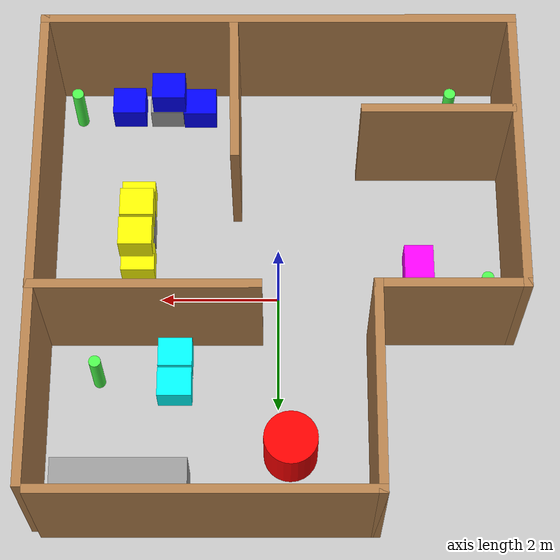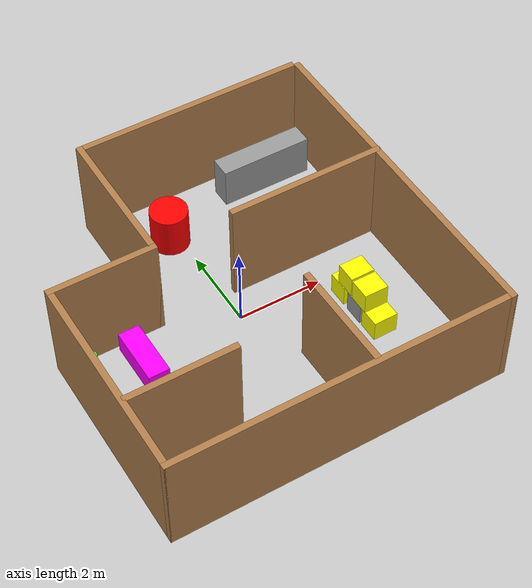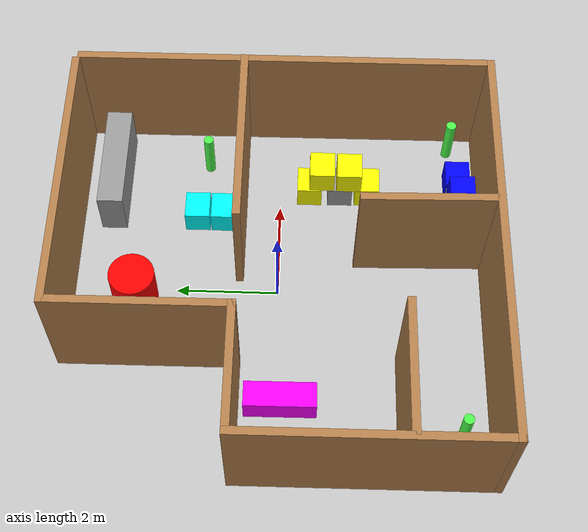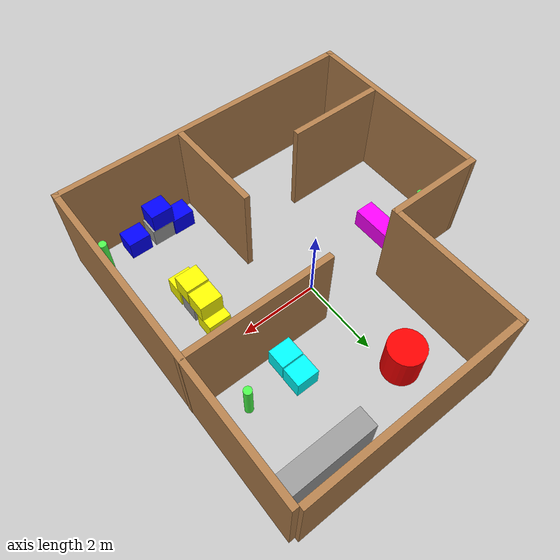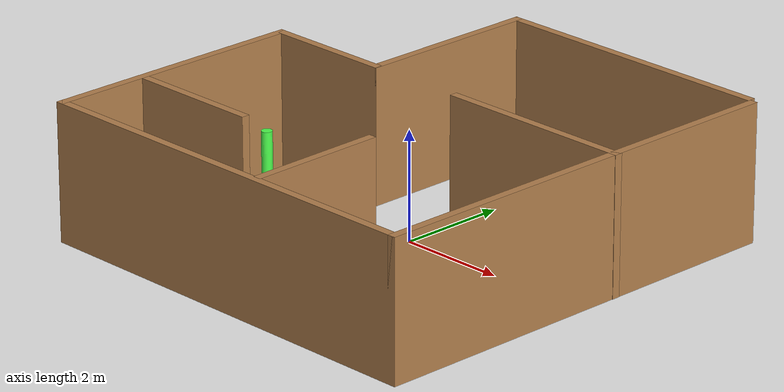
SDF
<sdf version="1.6">
 <model name="RoomHouse">
  <link name="Wall_0">
   <pose>-3.92876 -1.675 0 0 -0 1.5708</pose>
   <visual name="Wall_0_Visual">
    <pose>0 0 1.25 0 -0 0</pose>
    <geometry><box><size>5 0.15 2.5</size></box></geometry>
    <material>
     <script><uri>file://media/materials/scripts/gazebo.material</uri><name>Gazebo/Wood</name></script>
     <ambient>1 1 1 1</ambient>
    </material>
    <meta><layer>0</layer></meta>
   </visual>
   <collision name="Wall_0_Collision">
    <pose>0 0 1.25 0 -0 0</pose>
    <geometry><box><size>5 0.15 2.5</size></box></geometry>
    <surface>
     <friction>
      <ode><mu>1</mu><mu2>1</mu2><fdir1>0 0 0</fdir1><slip1>0</slip1><slip2>0</slip2></ode>
      <torsional>
       <coefficient>1</coefficient>
       <patch_radius>0</patch_radius>
       <surface_radius>0</surface_radius>
       <use_patch_radius>1</use_patch_radius>
       <ode><slip>0</slip></ode>
      </torsional>
     </friction>
     <bounce><restitution_coefficient>0</restitution_coefficient><threshold>1e+06</threshold></bounce>
     <contact>
      <collide_without_contact>0</collide_without_contact>
      <collide_without_contact_bitmask>1</collide_without_contact_bitmask>
      <collide_bitmask>1</collide_bitmask>
      <ode>
       <soft_cfm>0</soft_cfm>
       <soft_erp>0.2</soft_erp>
       <kp>1e+13</kp>
       <kd>1</kd>
       <max_vel>0.01</max_vel>
       <min_depth>0</min_depth>
      </ode>
      <bullet>
       <split_impulse>1</split_impulse>
       <split_impulse_penetration_threshold>-0.01</split_impulse_penetration_threshold>
       <soft_cfm>0</soft_cfm>
       <soft_erp>0.2</soft_erp>
       <kp>1e+13</kp>
       <kd>1</kd>
      </bullet>
     </contact>
    </surface>
   </collision>
  </link>
  <link name="Wall_12">
   <pose>2.12876 0.762181 0 0 -0 3.14159</pose>
   <visual name="Wall_12_Visual">
    <pose>0 0 1.25 0 -0 0</pose>
    <geometry><box><size>3.75 0.15 2.5</size></box></geometry>
    <material>
     <script><uri>file://media/materials/scripts/gazebo.material</uri><name>Gazebo/Wood</name></script>
     <ambient>1 1 1 1</ambient>
    </material>
    <meta><layer>0</layer></meta>
   </visual>
   <collision name="Wall_12_Collision">
    <pose>0 0 1.25 0 -0 0</pose>
    <geometry><box><size>3.75 0.15 2.5</size></box></geometry>
    <surface>
     <friction>
      <ode><mu>1</mu><mu2>1</mu2><fdir1>0 0 0</fdir1><slip1>0</slip1><slip2>0</slip2></ode>
      <torsional>
       <coefficient>1</coefficient>
       <patch_radius>0</patch_radius>
       <surface_radius>0</surface_radius>
       <use_patch_radius>1</use_patch_radius>
       <ode><slip>0</slip></ode>
      </torsional>
     </friction>
     <bounce><restitution_coefficient>0</restitution_coefficient><threshold>1e+06</threshold></bounce>
     <contact>
      <collide_without_contact>0</collide_without_contact>
      <collide_without_contact_bitmask>1</collide_without_contact_bitmask>
      <collide_bitmask>1</collide_bitmask>
      <ode>
       <soft_cfm>0</soft_cfm>
       <soft_erp>0.2</soft_erp>
       <kp>1e+13</kp>
       <kd>1</kd>
       <max_vel>0.01</max_vel>
       <min_depth>0</min_depth>
      </ode>
      <bullet>
       <split_impulse>1</split_impulse>
       <split_impulse_penetration_threshold>-0.01</split_impulse_penetration_threshold>
       <soft_cfm>0</soft_cfm>
       <soft_erp>0.2</soft_erp>
       <kp>1e+13</kp>
       <kd>1</kd>
      </bullet>
     </contact>
    </surface>
   </collision>
  </link>
  <link name="Wall_12_clone">
   <pose>-2.64229 -2.37905 0 0 -0 3.14159</pose>
   <inertial>
    <inertia><ixx>0</ixx><ixy>0</ixy><ixz>0</ixz><iyy>0</iyy><iyz>0</iyz><izz>0</izz></inertia>
    <mass>0</mass>
   </inertial>
   <visual name="Wall_12_Visual">
    <pose>0 0 1.25 0 -0 0</pose>
    <geometry><box><size>2.54886 0.15 2.5</size></box></geometry>
    <material>
     <script><uri>file://media/materials/scripts/gazebo.material</uri><name>Gazebo/Wood</name></script>
     <ambient>1 1 1 1</ambient>
     <shader type="pixel"/>
    </material>
    <meta><layer>0</layer></meta>
   </visual>
   <collision name="Wall_12_Collision">
    <pose>0 0 1.25 0 -0 0</pose>
    <geometry><box><size>2.54886 0.15 2.5</size></box></geometry>
    <surface>
     <friction>
      <ode><mu>1</mu><mu2>1</mu2><fdir1>0 0 0</fdir1><slip1>0</slip1><slip2>0</slip2></ode>
      <torsional>
       <coefficient>1</coefficient>
       <patch_radius>0</patch_radius>
       <surface_radius>0</surface_radius>
       <use_patch_radius>1</use_patch_radius>
       <ode><slip>0</slip></ode>
      </torsional>
     </friction>
     <bounce><restitution_coefficient>0</restitution_coefficient><threshold>1e+06</threshold></bounce>
     <contact>
      <collide_without_contact>0</collide_without_contact>
      <collide_without_contact_bitmask>1</collide_without_contact_bitmask>
      <collide_bitmask>1</collide_bitmask>
      <ode>
       <soft_cfm>0</soft_cfm>
       <soft_erp>0.2</soft_erp>
       <kp>1e+13</kp>
       <kd>1</kd>
       <max_vel>0.01</max_vel>
       <min_depth>0</min_depth>
      </ode>
      <bullet>
       <split_impulse>1</split_impulse>
       <split_impulse_penetration_threshold>-0.01</split_impulse_penetration_threshold>
       <soft_cfm>0</soft_cfm>
       <soft_erp>0.2</soft_erp>
       <kp>1e+13</kp>
       <kd>1</kd>
      </bullet>
     </contact>
    </surface>
   </collision>
  </link>
  <link name="Wall_12_clone_clone">
   <pose>0.72508 -2.77455 0 0 -0 1.58655</pose>
   <inertial>
    <inertia><ixx>0</ixx><ixy>0</ixy><ixz>0</ixz><iyy>0</iyy><iyz>0</iyz><izz>0</izz></inertia>
    <mass>0</mass>
   </inertial>
   <visual name="Wall_12_Visual">
    <pose>0 0 1.25 0 -0 0</pose>
    <geometry><box><size>2.54886 0.15 2.5</size></box></geometry>
    <material>
     <script><uri>file://media/materials/scripts/gazebo.material</uri><name>Gazebo/Wood</name></script>
     <ambient>1 1 1 1</ambient>
     <shader type="pixel"/>
    </material>
    <meta><layer>0</layer></meta>
   </visual>
   <collision name="Wall_12_Collision">
    <pose>0 0 1.25 0 -0 0</pose>
    <geometry><box><size>2.54886 0.15 2.5</size></box></geometry>
    <surface>
     <friction>
      <ode><mu>1</mu><mu2>1</mu2><fdir1>0 0 0</fdir1><slip1>0</slip1><slip2>0</slip2></ode>
      <torsional>
       <coefficient>1</coefficient>
       <patch_radius>0</patch_radius>
       <surface_radius>0</surface_radius>
       <use_patch_radius>1</use_patch_radius>
       <ode><slip>0</slip></ode>
      </torsional>
     </friction>
     <bounce><restitution_coefficient>0</restitution_coefficient><threshold>1e+06</threshold></bounce>
     <contact>
      <collide_without_contact>0</collide_without_contact>
      <collide_without_contact_bitmask>1</collide_without_contact_bitmask>
      <collide_bitmask>1</collide_bitmask>
      <ode>
       <soft_cfm>0</soft_cfm>
       <soft_erp>0.2</soft_erp>
       <kp>1e+13</kp>
       <kd>1</kd>
       <max_vel>0.01</max_vel>
       <min_depth>0</min_depth>
      </ode>
      <bullet>
       <split_impulse>1</split_impulse>
       <split_impulse_penetration_threshold>-0.01</split_impulse_penetration_threshold>
       <soft_cfm>0</soft_cfm>
       <soft_erp>0.2</soft_erp>
       <kp>1e+13</kp>
       <kd>1</kd>
      </bullet>
     </contact>
    </surface>
   </collision>
  </link>
  <link name="Wall_2">
   <pose>-0.003758 -4.1 0 0 -0 0</pose>
   <visual name="Wall_2_Visual">
    <pose>0 0 1.25 0 -0 0</pose>
    <geometry><box><size>8 0.15 2.5</size></box></geometry>
    <material>
     <script><uri>file://media/materials/scripts/gazebo.material</uri><name>Gazebo/Wood</name></script>
     <ambient>1 1 1 1</ambient>
    </material>
    <meta><layer>0</layer></meta>
   </visual>
   <collision name="Wall_2_Collision">
    <pose>0 0 1.25 0 -0 0</pose>
    <geometry><box><size>8 0.15 2.5</size></box></geometry>
    <surface>
     <friction>
      <ode><mu>1</mu><mu2>1</mu2><fdir1>0 0 0</fdir1><slip1>0</slip1><slip2>0</slip2></ode>
      <torsional>
       <coefficient>1</coefficient>
       <patch_radius>0</patch_radius>
       <surface_radius>0</surface_radius>
       <use_patch_radius>1</use_patch_radius>
       <ode><slip>0</slip></ode>
      </torsional>
     </friction>
     <bounce><restitution_coefficient>0</restitution_coefficient><threshold>1e+06</threshold></bounce>
     <contact>
      <collide_without_contact>0</collide_without_contact>
      <collide_without_contact_bitmask>1</collide_without_contact_bitmask>
      <collide_bitmask>1</collide_bitmask>
      <ode>
       <soft_cfm>0</soft_cfm>
       <soft_erp>0.2</soft_erp>
       <kp>1e+13</kp>
       <kd>1</kd>
       <max_vel>0.01</max_vel>
       <min_depth>0</min_depth>
      </ode>
      <bullet>
       <split_impulse>1</split_impulse>
       <split_impulse_penetration_threshold>-0.01</split_impulse_penetration_threshold>
       <soft_cfm>0</soft_cfm>
       <soft_erp>0.2</soft_erp>
       <kp>1e+13</kp>
       <kd>1</kd>
      </bullet>
     </contact>
    </surface>
   </collision>
  </link>
  <link name="Wall_4">
   <pose>3.92124 -0.05 0 0 -0 1.5708</pose>
   <visual name="Wall_4_Visual">
    <pose>0 0 1.25 0 -0 0</pose>
    <geometry><box><size>8.25 0.15 2.5</size></box></geometry>
    <material>
     <script><uri>file://media/materials/scripts/gazebo.material</uri><name>Gazebo/Wood</name></script>
     <ambient>1 1 1 1</ambient>
    </material>
    <meta><layer>0</layer></meta>
   </visual>
   <collision name="Wall_4_Collision">
    <pose>0 0 1.25 0 -0 0</pose>
    <geometry><box><size>8.25 0.15 2.5</size></box></geometry>
    <surface>
     <friction>
      <ode><mu>1</mu><mu2>1</mu2><fdir1>0 0 0</fdir1><slip1>0</slip1><slip2>0</slip2></ode>
      <torsional>
       <coefficient>1</coefficient>
       <patch_radius>0</patch_radius>
       <surface_radius>0</surface_radius>
       <use_patch_radius>1</use_patch_radius>
       <ode><slip>0</slip></ode>
      </torsional>
     </friction>
     <bounce><restitution_coefficient>0</restitution_coefficient><threshold>1e+06</threshold></bounce>
     <contact>
      <collide_without_contact>0</collide_without_contact>
      <collide_without_contact_bitmask>1</collide_without_contact_bitmask>
      <collide_bitmask>1</collide_bitmask>
      <ode>
       <soft_cfm>0</soft_cfm>
       <soft_erp>0.2</soft_erp>
       <kp>1e+13</kp>
       <kd>1</kd>
       <max_vel>0.01</max_vel>
       <min_depth>0</min_depth>
      </ode>
      <bullet>
       <split_impulse>1</split_impulse>
       <split_impulse_penetration_threshold>-0.01</split_impulse_penetration_threshold>
       <soft_cfm>0</soft_cfm>
       <soft_erp>0.2</soft_erp>
       <kp>1e+13</kp>
       <kd>1</kd>
      </bullet>
     </contact>
    </surface>
   </collision>
  </link>
  <link name="Wall_6">
   <pose>-2.75376 0.75 0 0 -0 0</pose>
   <visual name="Wall_6_Visual">
    <pose>0 0 1.25 0 -0 0</pose>
    <geometry><box><size>2.5 0.15 2.5</size></box></geometry>
    <material>
     <script><uri>file://media/materials/scripts/gazebo.material</uri><name>Gazebo/Wood</name></script>
     <ambient>1 1 1 1</ambient>
    </material>
    <meta><layer>0</layer></meta>
   </visual>
   <collision name="Wall_6_Collision">
    <pose>0 0 1.25 0 -0 0</pose>
    <geometry><box><size>2.5 0.15 2.5</size></box></geometry>
    <surface>
     <friction>
      <ode><mu>1</mu><mu2>1</mu2><fdir1>0 0 0</fdir1><slip1>0</slip1><slip2>0</slip2></ode>
      <torsional>
       <coefficient>1</coefficient>
       <patch_radius>0</patch_radius>
       <surface_radius>0</surface_radius>
       <use_patch_radius>1</use_patch_radius>
       <ode><slip>0</slip></ode>
      </torsional>
     </friction>
     <bounce><restitution_coefficient>0</restitution_coefficient><threshold>1e+06</threshold></bounce>
     <contact>
      <collide_without_contact>0</collide_without_contact>
      <collide_without_contact_bitmask>1</collide_without_contact_bitmask>
      <collide_bitmask>1</collide_bitmask>
      <ode>
       <soft_cfm>0</soft_cfm>
       <soft_erp>0.2</soft_erp>
       <kp>1e+13</kp>
       <kd>1</kd>
       <max_vel>0.01</max_vel>
       <min_depth>0</min_depth>
      </ode>
      <bullet>
       <split_impulse>1</split_impulse>
       <split_impulse_penetration_threshold>-0.01</split_impulse_penetration_threshold>
       <soft_cfm>0</soft_cfm>
       <soft_erp>0.2</soft_erp>
       <kp>1e+13</kp>
       <kd>1</kd>
      </bullet>
     </contact>
    </surface>
   </collision>
  </link>
  <link name="Wall_8">
   <pose>-1.57876 2.425 0 0 -0 1.5708</pose>
   <visual name="Wall_8_Visual">
    <pose>0 0 1.25 0 -0 0</pose>
    <geometry><box><size>3.5 0.15 2.5</size></box></geometry>
    <material>
     <script><uri>file://media/materials/scripts/gazebo.material</uri><name>Gazebo/Wood</name></script>
     <ambient>1 1 1 1</ambient>
    </material>
    <meta><layer>0</layer></meta>
   </visual>
   <collision name="Wall_8_Collision">
    <pose>0 0 1.25 0 -0 0</pose>
    <geometry><box><size>3.5 0.15 2.5</size></box></geometry>
    <surface>
     <friction>
      <ode><mu>1</mu><mu2>1</mu2><fdir1>0 0 0</fdir1><slip1>0</slip1><slip2>0</slip2></ode>
      <torsional>
       <coefficient>1</coefficient>
       <patch_radius>0</patch_radius>
       <surface_radius>0</surface_radius>
       <use_patch_radius>1</use_patch_radius>
       <ode><slip>0</slip></ode>
      </torsional>
     </friction>
     <bounce><restitution_coefficient>0</restitution_coefficient><threshold>1e+06</threshold></bounce>
     <contact>
      <collide_without_contact>0</collide_without_contact>
      <collide_without_contact_bitmask>1</collide_without_contact_bitmask>
      <collide_bitmask>1</collide_bitmask>
      <ode>
       <soft_cfm>0</soft_cfm>
       <soft_erp>0.2</soft_erp>
       <kp>1e+13</kp>
       <kd>1</kd>
       <max_vel>0.01</max_vel>
       <min_depth>0</min_depth>
      </ode>
      <bullet>
       <split_impulse>1</split_impulse>
       <split_impulse_penetration_threshold>-0.01</split_impulse_penetration_threshold>
       <soft_cfm>0</soft_cfm>
       <soft_erp>0.2</soft_erp>
       <kp>1e+13</kp>
       <kd>1</kd>
      </bullet>
     </contact>
    </surface>
   </collision>
  </link>
  <link name="Wall_9">
   <pose>1.09624 4.1 0 0 -0 0</pose>
   <visual name="Wall_9_Visual">
    <pose>0 0 1.25 0 -0 0</pose>
    <geometry><box><size>5.5 0.15 2.5</size></box></geometry>
    <material>
     <script><uri>file://media/materials/scripts/gazebo.material</uri><name>Gazebo/Wood</name></script>
     <ambient>1 1 1 1</ambient>
    </material>
    <meta><layer>0</layer></meta>
   </visual>
   <collision name="Wall_9_Collision">
    <pose>0 0 1.25 0 -0 0</pose>
    <geometry><box><size>5.5 0.15 2.5</size></box></geometry>
    <surface>
     <friction>
      <ode><mu>1</mu><mu2>1</mu2><fdir1>0 0 0</fdir1><slip1>0</slip1><slip2>0</slip2></ode>
      <torsional>
       <coefficient>1</coefficient>
       <patch_radius>0</patch_radius>
       <surface_radius>0</surface_radius>
       <use_patch_radius>1</use_patch_radius>
       <ode><slip>0</slip></ode>
      </torsional>
     </friction>
     <bounce><restitution_coefficient>0</restitution_coefficient><threshold>1e+06</threshold></bounce>
     <contact>
      <collide_without_contact>0</collide_without_contact>
      <collide_without_contact_bitmask>1</collide_without_contact_bitmask>
      <collide_bitmask>1</collide_bitmask>
      <ode>
       <soft_cfm>0</soft_cfm>
       <soft_erp>0.2</soft_erp>
       <kp>1e+13</kp>
       <kd>1</kd>
       <max_vel>0.01</max_vel>
       <min_depth>0</min_depth>
      </ode>
      <bullet>
       <split_impulse>1</split_impulse>
       <split_impulse_penetration_threshold>-0.01</split_impulse_penetration_threshold>
       <soft_cfm>0</soft_cfm>
       <soft_erp>0.2</soft_erp>
       <kp>1e+13</kp>
       <kd>1</kd>
      </bullet>
     </contact>
    </surface>
   </collision>
  </link>
  <link name="link_0">
   <inertial>
    <mass>1.12546</mass>
    <inertia>
     <ixx>0.118193</ixx>
     <ixy>0</ixy>
     <ixz>0</ixz>
     <iyy>0.55036</iyy>
     <iyz>0</iyz>
     <izz>0.480977</izz>
    </inertia>
   </inertial>
   <pose>2.55096 3.38549 0.5 0 -0 0</pose>
   <visual name="visual">
    <geometry><box><size>2.20638 0.510112 1</size></box></geometry>
    <material>
     <lighting>1</lighting>
     <script><uri>file://media/materials/scripts/gazebo.material</uri><name>Gazebo/Grey</name></script>
     <ambient>0.5 0.5 0.5 0</ambient>
     <shader type="vertex"><normal_map>__default__</normal_map></shader>
     <diffuse>0.7 0.7 0.7 1</diffuse>
     <specular>0.01 0.01 0.01 1</specular>
     <emissive>0 0 0 1</emissive>
    </material>
   </visual>
   <collision name="collision">
    <geometry><box><size>2.20638 0.510112 1</size></box></geometry>
    <surface>
     <friction>
      <ode><mu>1</mu><mu2>1</mu2><fdir1>0 0 0</fdir1><slip1>0</slip1><slip2>0</slip2></ode>
      <torsional>
       <coefficient>1</coefficient>
       <patch_radius>0</patch_radius>
       <surface_radius>0</surface_radius>
       <use_patch_radius>1</use_patch_radius>
       <ode><slip>0</slip></ode>
      </torsional>
     </friction>
     <bounce><restitution_coefficient>0</restitution_coefficient><threshold>1e+06</threshold></bounce>
     <contact>
      <collide_without_contact>0</collide_without_contact>
      <collide_without_contact_bitmask>1</collide_without_contact_bitmask>
      <collide_bitmask>1</collide_bitmask>
      <ode>
       <soft_cfm>0</soft_cfm>
       <soft_erp>0.2</soft_erp>
       <kp>1e+13</kp>
       <kd>1</kd>
       <max_vel>0.01</max_vel>
       <min_depth>0</min_depth>
      </ode>
      <bullet>
       <split_impulse>1</split_impulse>
       <split_impulse_penetration_threshold>-0.01</split_impulse_penetration_threshold>
       <soft_cfm>0</soft_cfm>
       <soft_erp>0.2</soft_erp>
       <kp>1e+13</kp>
       <kd>1</kd>
      </bullet>
     </contact>
    </surface>
   </collision>
  </link>
  <link name="link_0_0">
   <inertial>
    <mass>0.146602</mass>
    <inertia>
     <ixx>0.00626931</ixx>
     <ixy>0</ixy>
     <ixz>0</ixz>
     <iyy>0.00723583</iyy>
     <iyz>0</iyz>
     <izz>0.00701892</izz>
    </inertia>
   </inertial>
   <pose>1.3865 -3.62185 0.267544 0 -0 0</pose>
   <visual name="visual">
    <geometry><box><size>0.571682 0.497702 0.51523</size></box></geometry>
    <material>
     <lighting>1</lighting>
     <script><uri>file://media/materials/scripts/gazebo.material</uri><name>Gazebo/Grey</name></script>
     <ambient>0 0 1 0</ambient>
     <shader type="vertex"><normal_map>__default__</normal_map></shader>
     <diffuse>0.7 0.7 0.7 1</diffuse>
     <specular>0.01 0.01 0.01 1</specular>
     <emissive>0 0 0 1</emissive>
    </material>
   </visual>
   <collision name="collision">
    <geometry><box><size>0.571682 0.497702 0.51523</size></box></geometry>
    <surface>
     <friction>
      <ode><mu>1</mu><mu2>1</mu2><fdir1>0 0 0</fdir1><slip1>0</slip1><slip2>0</slip2></ode>
      <torsional>
       <coefficient>1</coefficient>
       <patch_radius>0</patch_radius>
       <surface_radius>0</surface_radius>
       <use_patch_radius>1</use_patch_radius>
       <ode><slip>0</slip></ode>
      </torsional>
     </friction>
     <bounce><restitution_coefficient>0</restitution_coefficient><threshold>1e+06</threshold></bounce>
     <contact>
      <collide_without_contact>0</collide_without_contact>
      <collide_without_contact_bitmask>1</collide_without_contact_bitmask>
      <collide_bitmask>1</collide_bitmask>
      <ode>
       <soft_cfm>0</soft_cfm>
       <soft_erp>0.2</soft_erp>
       <kp>1e+13</kp>
       <kd>1</kd>
       <max_vel>0.01</max_vel>
       <min_depth>0</min_depth>
      </ode>
      <bullet>
       <split_impulse>1</split_impulse>
       <split_impulse_penetration_threshold>-0.01</split_impulse_penetration_threshold>
       <soft_cfm>0</soft_cfm>
       <soft_erp>0.2</soft_erp>
       <kp>1e+13</kp>
       <kd>1</kd>
      </bullet>
     </contact>
    </surface>
   </collision>
  </link>
  <link name="link_0_0_clone">
   <inertial>
    <mass>0.146602</mass>
    <inertia>
     <ixx>0.00626931</ixx>
     <ixy>0</ixy>
     <ixz>0</ixz>
     <iyy>0.00723583</iyy>
     <iyz>0</iyz>
     <izz>0.00701892</izz>
    </inertia>
   </inertial>
   <pose>1.96838 -3.64227 0.267544 0 -0 0</pose>
   <visual name="visual_0">
    <geometry><box><size>0.571682 0.497702 0.51523</size></box></geometry>
    <material>
     <lighting>1</lighting>
     <script><uri>file://media/materials/scripts/gazebo.material</uri><name>Gazebo/Grey</name></script>
     <shader type="pixel"/>
    </material>
   </visual>
   <collision name="collision">
    <geometry><box><size>0.571682 0.497702 0.51523</size></box></geometry>
    <surface>
     <friction>
      <ode><mu>1</mu><mu2>1</mu2><fdir1>0 0 0</fdir1><slip1>0</slip1><slip2>0</slip2></ode>
      <torsional>
       <coefficient>1</coefficient>
       <patch_radius>0</patch_radius>
       <surface_radius>0</surface_radius>
       <use_patch_radius>1</use_patch_radius>
       <ode><slip>0</slip></ode>
      </torsional>
     </friction>
     <bounce><restitution_coefficient>0</restitution_coefficient><threshold>1e+06</threshold></bounce>
     <contact>
      <collide_without_contact>0</collide_without_contact>
      <collide_without_contact_bitmask>1</collide_without_contact_bitmask>
      <collide_bitmask>1</collide_bitmask>
      <ode>
       <soft_cfm>0</soft_cfm>
       <soft_erp>0.2</soft_erp>
       <kp>1e+13</kp>
       <kd>1</kd>
       <max_vel>0.01</max_vel>
       <min_depth>0</min_depth>
      </ode>
      <bullet>
       <split_impulse>1</split_impulse>
       <split_impulse_penetration_threshold>-0.01</split_impulse_penetration_threshold>
       <soft_cfm>0</soft_cfm>
       <soft_erp>0.2</soft_erp>
       <kp>1e+13</kp>
       <kd>1</kd>
      </bullet>
     </contact>
    </surface>
   </collision>
  </link>
  <link name="link_0_0_clone_clone">
   <inertial>
    <mass>0.146602</mass>
    <inertia>
     <ixx>0.00626931</ixx>
     <ixy>0</ixy>
     <ixz>0</ixz>
     <iyy>0.00723583</iyy>
     <iyz>0</iyz>
     <izz>0.00701892</izz>
    </inertia>
   </inertial>
   <pose>2.63863 -3.64523 0.267544 0 -0 0</pose>
   <visual name="visual_0">
    <geometry><box><size>0.571682 0.497702 0.51523</size></box></geometry>
    <material>
     <lighting>1</lighting>
     <script><uri>file://media/materials/scripts/gazebo.material</uri><name>Gazebo/Grey</name></script>
     <shader type="pixel"><normal_map>__default__</normal_map></shader>
     <ambient>0 0 1 0</ambient>
     <diffuse>0.7 0.7 0.7 1</diffuse>
     <specular>0.01 0.01 0.01 1</specular>
     <emissive>0 0 0 1</emissive>
    </material>
   </visual>
   <collision name="collision">
    <geometry><box><size>0.571682 0.497702 0.51523</size></box></geometry>
    <surface>
     <friction>
      <ode><mu>1</mu><mu2>1</mu2><fdir1>0 0 0</fdir1><slip1>0</slip1><slip2>0</slip2></ode>
      <torsional>
       <coefficient>1</coefficient>
       <patch_radius>0</patch_radius>
       <surface_radius>0</surface_radius>
       <use_patch_radius>1</use_patch_radius>
       <ode><slip>0</slip></ode>
      </torsional>
     </friction>
     <bounce><restitution_coefficient>0</restitution_coefficient><threshold>1e+06</threshold></bounce>
     <contact>
      <collide_without_contact>0</collide_without_contact>
      <collide_without_contact_bitmask>1</collide_without_contact_bitmask>
      <collide_bitmask>1</collide_bitmask>
      <ode>
       <soft_cfm>0</soft_cfm>
       <soft_erp>0.2</soft_erp>
       <kp>1e+13</kp>
       <kd>1</kd>
       <max_vel>0.01</max_vel>
       <min_depth>0</min_depth>
      </ode>
      <bullet>
       <split_impulse>1</split_impulse>
       <split_impulse_penetration_threshold>-0.01</split_impulse_penetration_threshold>
       <soft_cfm>0</soft_cfm>
       <soft_erp>0.2</soft_erp>
       <kp>1e+13</kp>
       <kd>1</kd>
      </bullet>
     </contact>
    </surface>
   </collision>
  </link>
  <link name="link_0_0_clone_clone_0">
   <inertial>
    <mass>0.146602</mass>
    <inertia>
     <ixx>0.00626931</ixx>
     <ixy>0</ixy>
     <ixz>0</ixz>
     <iyy>0.00723583</iyy>
     <iyz>0</iyz>
     <izz>0.00701892</izz>
    </inertia>
   </inertial>
   <pose>1.91455 -3.64943 0.784163 0 -0 0</pose>
   <visual name="visual_0">
    <geometry><box><size>0.571682 0.497702 0.51523</size></box></geometry>
    <material>
     <lighting>1</lighting>
     <script><uri>file://media/materials/scripts/gazebo.material</uri><name>Gazebo/Grey</name></script>
     <shader type="pixel"><normal_map>__default__</normal_map></shader>
     <ambient>0 0 1 0</ambient>
     <diffuse>0.7 0.7 0.7 1</diffuse>
     <specular>0.01 0.01 0.01 1</specular>
     <emissive>0 0 0 1</emissive>
    </material>
   </visual>
   <collision name="collision">
    <geometry><box><size>0.571682 0.497702 0.51523</size></box></geometry>
    <surface>
     <friction>
      <ode><mu>1</mu><mu2>1</mu2><fdir1>0 0 0</fdir1><slip1>0</slip1><slip2>0</slip2></ode>
      <torsional>
       <coefficient>1</coefficient>
       <patch_radius>0</patch_radius>
       <surface_radius>0</surface_radius>
       <use_patch_radius>1</use_patch_radius>
       <ode><slip>0</slip></ode>
      </torsional>
     </friction>
     <bounce><restitution_coefficient>0</restitution_coefficient><threshold>1e+06</threshold></bounce>
     <contact>
      <collide_without_contact>0</collide_without_contact>
      <collide_without_contact_bitmask>1</collide_without_contact_bitmask>
      <collide_bitmask>1</collide_bitmask>
      <ode>
       <soft_cfm>0</soft_cfm>
       <soft_erp>0.2</soft_erp>
       <kp>1e+13</kp>
       <kd>1</kd>
       <max_vel>0.01</max_vel>
       <min_depth>0</min_depth>
      </ode>
      <bullet>
       <split_impulse>1</split_impulse>
       <split_impulse_penetration_threshold>-0.01</split_impulse_penetration_threshold>
       <soft_cfm>0</soft_cfm>
       <soft_erp>0.2</soft_erp>
       <kp>1e+13</kp>
       <kd>1</kd>
      </bullet>
     </contact>
    </surface>
   </collision>
  </link>
  <link name="link_0_0_clone_clone_clone">
   <inertial>
    <mass>0.146602</mass>
    <inertia>
     <ixx>0.00626931</ixx>
     <ixy>0</ixy>
     <ixz>0</ixz>
     <iyy>0.00723583</iyy>
     <iyz>0</iyz>
     <izz>0.00701892</izz>
    </inertia>
   </inertial>
   <pose>2.39989 -0.597576 0.267544 0 -0 0</pose>
   <visual name="visual_0">
    <geometry><box><size>0.571682 0.497702 0.51523</size></box></geometry>
    <material>
     <lighting>1</lighting>
     <script><uri>file://media/materials/scripts/gazebo.material</uri><name>Gazebo/Grey</name></script>
     <shader type="pixel"><normal_map>__default__</normal_map></shader>
     <ambient>1 1 0 1</ambient>
     <diffuse>0.7 0.7 0.7 1</diffuse>
     <specular>0.01 0.01 0.01 1</specular>
     <emissive>0 0 0 1</emissive>
    </material>
   </visual>
   <collision name="collision">
    <geometry><box><size>0.571682 0.497702 0.51523</size></box></geometry>
    <surface>
     <friction>
      <ode><mu>1</mu><mu2>1</mu2><fdir1>0 0 0</fdir1><slip1>0</slip1><slip2>0</slip2></ode>
      <torsional>
       <coefficient>1</coefficient>
       <patch_radius>0</patch_radius>
       <surface_radius>0</surface_radius>
       <use_patch_radius>1</use_patch_radius>
       <ode><slip>0</slip></ode>
      </torsional>
     </friction>
     <bounce><restitution_coefficient>0</restitution_coefficient><threshold>1e+06</threshold></bounce>
     <contact>
      <collide_without_contact>0</collide_without_contact>
      <collide_without_contact_bitmask>1</collide_without_contact_bitmask>
      <collide_bitmask>1</collide_bitmask>
      <ode>
       <soft_cfm>0</soft_cfm>
       <soft_erp>0.2</soft_erp>
       <kp>1e+13</kp>
       <kd>1</kd>
       <max_vel>0.01</max_vel>
       <min_depth>0</min_depth>
      </ode>
      <bullet>
       <split_impulse>1</split_impulse>
       <split_impulse_penetration_threshold>-0.01</split_impulse_penetration_threshold>
       <soft_cfm>0</soft_cfm>
       <soft_erp>0.2</soft_erp>
       <kp>1e+13</kp>
       <kd>1</kd>
      </bullet>
     </contact>
    </surface>
   </collision>
  </link>
  <link name="link_0_0_clone_clone_clone_clone">
   <inertial>
    <mass>0.146602</mass>
    <inertia>
     <ixx>0.00626931</ixx>
     <ixy>0</ixy>
     <ixz>0</ixz>
     <iyy>0.00723583</iyy>
     <iyz>0</iyz>
     <izz>0.00701892</izz>
    </inertia>
   </inertial>
   <pose>2.40691 -1.21926 0.267544 0 -0 0</pose>
   <visual name="visual_0">
    <geometry><box><size>0.571682 0.497702 0.51523</size></box></geometry>
    <material>
     <lighting>1</lighting>
     <script><uri>file://media/materials/scripts/gazebo.material</uri><name>Gazebo/Grey</name></script>
     <shader type="pixel"/>
    </material>
   </visual>
   <collision name="collision">
    <geometry><box><size>0.571682 0.497702 0.51523</size></box></geometry>
    <surface>
     <friction>
      <ode><mu>1</mu><mu2>1</mu2><fdir1>0 0 0</fdir1><slip1>0</slip1><slip2>0</slip2></ode>
      <torsional>
       <coefficient>1</coefficient>
       <patch_radius>0</patch_radius>
       <surface_radius>0</surface_radius>
       <use_patch_radius>1</use_patch_radius>
       <ode><slip>0</slip></ode>
      </torsional>
     </friction>
     <bounce><restitution_coefficient>0</restitution_coefficient><threshold>1e+06</threshold></bounce>
     <contact>
      <collide_without_contact>0</collide_without_contact>
      <collide_without_contact_bitmask>1</collide_without_contact_bitmask>
      <collide_bitmask>1</collide_bitmask>
      <ode>
       <soft_cfm>0</soft_cfm>
       <soft_erp>0.2</soft_erp>
       <kp>1e+13</kp>
       <kd>1</kd>
       <max_vel>0.01</max_vel>
       <min_depth>0</min_depth>
      </ode>
      <bullet>
       <split_impulse>1</split_impulse>
       <split_impulse_penetration_threshold>-0.01</split_impulse_penetration_threshold>
       <soft_cfm>0</soft_cfm>
       <soft_erp>0.2</soft_erp>
       <kp>1e+13</kp>
       <kd>1</kd>
      </bullet>
     </contact>
    </surface>
   </collision>
  </link>
  <link name="link_0_0_clone_clone_clone_clone_0">
   <inertial>
    <mass>0.146602</mass>
    <inertia>
     <ixx>0.00626931</ixx>
     <ixy>0</ixy>
     <ixz>0</ixz>
     <iyy>0.00723583</iyy>
     <iyz>0</iyz>
     <izz>0.00701892</izz>
    </inertia>
   </inertial>
   <pose>2.41673 -1.77389 0.267544 0 -0 0</pose>
   <visual name="visual_0">
    <geometry><box><size>0.571682 0.497702 0.51523</size></box></geometry>
    <material>
     <lighting>1</lighting>
     <script><uri>file://media/materials/scripts/gazebo.material</uri><name>Gazebo/Grey</name></script>
     <shader type="pixel"><normal_map>__default__</normal_map></shader>
     <ambient>1 1 0 1</ambient>
     <diffuse>0.7 0.7 0.7 1</diffuse>
     <specular>0.01 0.01 0.01 1</specular>
     <emissive>0 0 0 1</emissive>
    </material>
   </visual>
   <collision name="collision">
    <geometry><box><size>0.571682 0.497702 0.51523</size></box></geometry>
    <surface>
     <friction>
      <ode><mu>1</mu><mu2>1</mu2><fdir1>0 0 0</fdir1><slip1>0</slip1><slip2>0</slip2></ode>
      <torsional>
       <coefficient>1</coefficient>
       <patch_radius>0</patch_radius>
       <surface_radius>0</surface_radius>
       <use_patch_radius>1</use_patch_radius>
       <ode><slip>0</slip></ode>
      </torsional>
     </friction>
     <bounce><restitution_coefficient>0</restitution_coefficient><threshold>1e+06</threshold></bounce>
     <contact>
      <collide_without_contact>0</collide_without_contact>
      <collide_without_contact_bitmask>1</collide_without_contact_bitmask>
      <collide_bitmask>1</collide_bitmask>
      <ode>
       <soft_cfm>0</soft_cfm>
       <soft_erp>0.2</soft_erp>
       <kp>1e+13</kp>
       <kd>1</kd>
       <max_vel>0.01</max_vel>
       <min_depth>0</min_depth>
      </ode>
      <bullet>
       <split_impulse>1</split_impulse>
       <split_impulse_penetration_threshold>-0.01</split_impulse_penetration_threshold>
       <soft_cfm>0</soft_cfm>
       <soft_erp>0.2</soft_erp>
       <kp>1e+13</kp>
       <kd>1</kd>
      </bullet>
     </contact>
    </surface>
   </collision>
  </link>
  <link name="link_0_0_clone_clone_clone_clone_1">
   <inertial>
    <mass>0.35228</mass>
    <inertia>
     <ixx>0.0150649</ixx>
     <ixy>0</ixy>
     <ixz>0</ixz>
     <iyy>0.0631932</iyy>
     <iyz>0</iyz>
     <izz>0.062672</izz>
    </inertia>
   </inertial>
   <pose>-2.40533 -0.113674 0.267544 0 -0 1.57373</pose>
   <visual name="visual_0">
    <geometry><box><size>1.37373 0.497702 0.51523</size></box></geometry>
    <material>
     <lighting>1</lighting>
     <script><uri>file://media/materials/scripts/gazebo.material</uri><name>Gazebo/Grey</name></script>
     <shader type="pixel"><normal_map>__default__</normal_map></shader>
     <ambient>1 0 1 0</ambient>
     <diffuse>0.7 0.7 0.7 1</diffuse>
     <specular>0.01 0.01 0.01 1</specular>
     <emissive>0 0 0 1</emissive>
    </material>
   </visual>
   <collision name="collision">
    <geometry><box><size>1.37373 0.497702 0.51523</size></box></geometry>
    <surface>
     <friction>
      <ode><mu>1</mu><mu2>1</mu2><fdir1>0 0 0</fdir1><slip1>0</slip1><slip2>0</slip2></ode>
      <torsional>
       <coefficient>1</coefficient>
       <patch_radius>0</patch_radius>
       <surface_radius>0</surface_radius>
       <use_patch_radius>1</use_patch_radius>
       <ode><slip>0</slip></ode>
      </torsional>
     </friction>
     <bounce><restitution_coefficient>0</restitution_coefficient><threshold>1e+06</threshold></bounce>
     <contact>
      <collide_without_contact>0</collide_without_contact>
      <collide_without_contact_bitmask>1</collide_without_contact_bitmask>
      <collide_bitmask>1</collide_bitmask>
      <ode>
       <soft_cfm>0</soft_cfm>
       <soft_erp>0.2</soft_erp>
       <kp>1e+13</kp>
       <kd>1</kd>
       <max_vel>0.01</max_vel>
       <min_depth>0</min_depth>
      </ode>
      <bullet>
       <split_impulse>1</split_impulse>
       <split_impulse_penetration_threshold>-0.01</split_impulse_penetration_threshold>
       <soft_cfm>0</soft_cfm>
       <soft_erp>0.2</soft_erp>
       <kp>1e+13</kp>
       <kd>1</kd>
      </bullet>
     </contact>
    </surface>
   </collision>
  </link>
  <link name="link_0_0_clone_clone_clone_clone_2">
   <inertial>
    <mass>0.146602</mass>
    <inertia>
     <ixx>0.00626931</ixx>
     <ixy>0</ixy>
     <ixz>0</ixz>
     <iyy>0.00723583</iyy>
     <iyz>0</iyz>
     <izz>0.00701892</izz>
    </inertia>
   </inertial>
   <pose>1.72465 1.66961 0.267544 0 -0 0</pose>
   <visual name="visual_0">
    <geometry><box><size>0.571682 0.497702 0.51523</size></box></geometry>
    <material>
     <lighting>1</lighting>
     <script><uri>file://media/materials/scripts/gazebo.material</uri><name>Gazebo/Grey</name></script>
     <shader type="pixel"><normal_map>__default__</normal_map></shader>
     <ambient>0 1 1 0</ambient>
     <diffuse>0.7 0.7 0.7 1</diffuse>
     <specular>0.01 0.01 0.01 1</specular>
     <emissive>0 0 0 1</emissive>
    </material>
   </visual>
   <collision name="collision">
    <geometry><box><size>0.571682 0.497702 0.51523</size></box></geometry>
    <surface>
     <friction>
      <ode><mu>1</mu><mu2>1</mu2><fdir1>0 0 0</fdir1><slip1>0</slip1><slip2>0</slip2></ode>
      <torsional>
       <coefficient>1</coefficient>
       <patch_radius>0</patch_radius>
       <surface_radius>0</surface_radius>
       <use_patch_radius>1</use_patch_radius>
       <ode><slip>0</slip></ode>
      </torsional>
     </friction>
     <bounce><restitution_coefficient>0</restitution_coefficient><threshold>1e+06</threshold></bounce>
     <contact>
      <collide_without_contact>0</collide_without_contact>
      <collide_without_contact_bitmask>1</collide_without_contact_bitmask>
      <collide_bitmask>1</collide_bitmask>
      <ode>
       <soft_cfm>0</soft_cfm>
       <soft_erp>0.2</soft_erp>
       <kp>1e+13</kp>
       <kd>1</kd>
       <max_vel>0.01</max_vel>
       <min_depth>0</min_depth>
      </ode>
      <bullet>
       <split_impulse>1</split_impulse>
       <split_impulse_penetration_threshold>-0.01</split_impulse_penetration_threshold>
       <soft_cfm>0</soft_cfm>
       <soft_erp>0.2</soft_erp>
       <kp>1e+13</kp>
       <kd>1</kd>
      </bullet>
     </contact>
    </surface>
   </collision>
  </link>
  <link name="link_0_0_clone_clone_clone_clone_2_clone">
   <inertial>
    <mass>0.146602</mass>
    <inertia>
     <ixx>0.00626931</ixx>
     <ixy>0</ixy>
     <ixz>0</ixz>
     <iyy>0.00723583</iyy>
     <iyz>0</iyz>
     <izz>0.00701892</izz>
    </inertia>
   </inertial>
   <pose>1.72029 1.14355 0.267544 0 -0 0</pose>
   <visual name="visual_0">
    <geometry><box><size>0.571682 0.497702 0.51523</size></box></geometry>
    <material>
     <lighting>1</lighting>
     <script><uri>file://media/materials/scripts/gazebo.material</uri><name>Gazebo/Grey</name></script>
     <shader type="pixel"><normal_map>__default__</normal_map></shader>
     <ambient>0 1 1 0</ambient>
     <diffuse>0.7 0.7 0.7 1</diffuse>
     <specular>0.01 0.01 0.01 1</specular>
     <emissive>0 0 0 1</emissive>
    </material>
   </visual>
   <collision name="collision">
    <geometry><box><size>0.571682 0.497702 0.51523</size></box></geometry>
    <surface>
     <friction>
      <ode><mu>1</mu><mu2>1</mu2><fdir1>0 0 0</fdir1><slip1>0</slip1><slip2>0</slip2></ode>
      <torsional>
       <coefficient>1</coefficient>
       <patch_radius>0</patch_radius>
       <surface_radius>0</surface_radius>
       <use_patch_radius>1</use_patch_radius>
       <ode><slip>0</slip></ode>
      </torsional>
     </friction>
     <bounce><restitution_coefficient>0</restitution_coefficient><threshold>1e+06</threshold></bounce>
     <contact>
      <collide_without_contact>0</collide_without_contact>
      <collide_without_contact_bitmask>1</collide_without_contact_bitmask>
      <collide_bitmask>1</collide_bitmask>
      <ode>
       <soft_cfm>0</soft_cfm>
       <soft_erp>0.2</soft_erp>
       <kp>1e+13</kp>
       <kd>1</kd>
       <max_vel>0.01</max_vel>
       <min_depth>0</min_depth>
      </ode>
      <bullet>
       <split_impulse>1</split_impulse>
       <split_impulse_penetration_threshold>-0.01</split_impulse_penetration_threshold>
       <soft_cfm>0</soft_cfm>
       <soft_erp>0.2</soft_erp>
       <kp>1e+13</kp>
       <kd>1</kd>
      </bullet>
     </contact>
    </surface>
   </collision>
  </link>
  <link name="link_0_0_clone_clone_clone_clone_clone">
   <inertial>
    <mass>0.146602</mass>
    <inertia>
     <ixx>0.00626931</ixx>
     <ixy>0</ixy>
     <ixz>0</ixz>
     <iyy>0.00723583</iyy>
     <iyz>0</iyz>
     <izz>0.00701892</izz>
    </inertia>
   </inertial>
   <pose>2.41599 -0.842118 0.788292 0 -0 0</pose>
   <visual name="visual_0">
    <geometry><box><size>0.571682 0.497702 0.51523</size></box></geometry>
    <material>
     <lighting>1</lighting>
     <script><uri>file://media/materials/scripts/gazebo.material</uri><name>Gazebo/Grey</name></script>
     <shader type="pixel"><normal_map>__default__</normal_map></shader>
     <ambient>1 1 0 0</ambient>
     <diffuse>0.7 0.7 0.7 1</diffuse>
     <specular>0.01 0.01 0.01 1</specular>
     <emissive>0 0 0 1</emissive>
    </material>
   </visual>
   <collision name="collision">
    <geometry><box><size>0.571682 0.497702 0.51523</size></box></geometry>
    <surface>
     <friction>
      <ode><mu>1</mu><mu2>1</mu2><fdir1>0 0 0</fdir1><slip1>0</slip1><slip2>0</slip2></ode>
      <torsional>
       <coefficient>1</coefficient>
       <patch_radius>0</patch_radius>
       <surface_radius>0</surface_radius>
       <use_patch_radius>1</use_patch_radius>
       <ode><slip>0</slip></ode>
      </torsional>
     </friction>
     <bounce><restitution_coefficient>0</restitution_coefficient><threshold>1e+06</threshold></bounce>
     <contact>
      <collide_without_contact>0</collide_without_contact>
      <collide_without_contact_bitmask>1</collide_without_contact_bitmask>
      <collide_bitmask>1</collide_bitmask>
      <ode>
       <soft_cfm>0</soft_cfm>
       <soft_erp>0.2</soft_erp>
       <kp>1e+13</kp>
       <kd>1</kd>
       <max_vel>0.01</max_vel>
       <min_depth>0</min_depth>
      </ode>
      <bullet>
       <split_impulse>1</split_impulse>
       <split_impulse_penetration_threshold>-0.01</split_impulse_penetration_threshold>
       <soft_cfm>0</soft_cfm>
       <soft_erp>0.2</soft_erp>
       <kp>1e+13</kp>
       <kd>1</kd>
      </bullet>
     </contact>
    </surface>
   </collision>
  </link>
  <link name="link_0_0_clone_clone_clone_clone_clone_clone">
   <inertial>
    <mass>0.146602</mass>
    <inertia>
     <ixx>0.00626931</ixx>
     <ixy>0</ixy>
     <ixz>0</ixz>
     <iyy>0.00723583</iyy>
     <iyz>0</iyz>
     <izz>0.00701892</izz>
    </inertia>
   </inertial>
   <pose>2.4051 -1.38934 0.788292 0 -0 0</pose>
   <visual name="visual_0">
    <geometry><box><size>0.571682 0.497702 0.51523</size></box></geometry>
    <material>
     <lighting>1</lighting>
     <script><uri>file://media/materials/scripts/gazebo.material</uri><name>Gazebo/Grey</name></script>
     <shader type="pixel"><normal_map>__default__</normal_map></shader>
     <ambient>1 1 0 1</ambient>
     <diffuse>0.7 0.7 0.7 1</diffuse>
     <specular>0.01 0.01 0.01 1</specular>
     <emissive>0 0 0 1</emissive>
    </material>
   </visual>
   <collision name="collision">
    <geometry><box><size>0.571682 0.497702 0.51523</size></box></geometry>
    <surface>
     <friction>
      <ode><mu>1</mu><mu2>1</mu2><fdir1>0 0 0</fdir1><slip1>0</slip1><slip2>0</slip2></ode>
      <torsional>
       <coefficient>1</coefficient>
       <patch_radius>0</patch_radius>
       <surface_radius>0</surface_radius>
       <use_patch_radius>1</use_patch_radius>
       <ode><slip>0</slip></ode>
      </torsional>
     </friction>
     <bounce><restitution_coefficient>0</restitution_coefficient><threshold>1e+06</threshold></bounce>
     <contact>
      <collide_without_contact>0</collide_without_contact>
      <collide_without_contact_bitmask>1</collide_without_contact_bitmask>
      <collide_bitmask>1</collide_bitmask>
      <ode>
       <soft_cfm>0</soft_cfm>
       <soft_erp>0.2</soft_erp>
       <kp>1e+13</kp>
       <kd>1</kd>
       <max_vel>0.01</max_vel>
       <min_depth>0</min_depth>
      </ode>
      <bullet>
       <split_impulse>1</split_impulse>
       <split_impulse_penetration_threshold>-0.01</split_impulse_penetration_threshold>
       <soft_cfm>0</soft_cfm>
       <soft_erp>0.2</soft_erp>
       <kp>1e+13</kp>
       <kd>1</kd>
      </bullet>
     </contact>
    </surface>
   </collision>
  </link>
  <link name="link_0_1">
   <inertial>
    <mass>0.0731269</mass>
    <inertia>
     <ixx>0.00642814</ixx>
     <ixy>0</ixy>
     <ixz>0</ixz>
     <iyy>0.00642814</iyy>
     <iyz>0</iyz>
     <izz>0.00066846</izz>
    </inertia>
   </inertial>
   <pose>3 1.5 0.5 0 -0 0</pose>
   <visual name="visual">
    <geometry><cylinder><radius>0.1</radius><length>1</length></cylinder></geometry>
    <material>
     <lighting>1</lighting>
     <script><uri>file://media/materials/scripts/gazebo.material</uri><name>Gazebo/Grey</name></script>
     <shader type="vertex"><normal_map>__default__</normal_map></shader>
     <ambient>0.3 1 0.3 1</ambient>
     <diffuse>0.7 0.7 0.7 1</diffuse>
     <specular>0.01 0.01 0.01 1</specular>
     <emissive>0 0 0 1</emissive>
    </material>
   </visual>
   <collision name="collision">
    <geometry><cylinder><radius>0.135212</radius><length>1</length></cylinder></geometry>
    <surface>
     <friction>
      <ode><mu>1</mu><mu2>1</mu2><fdir1>0 0 0</fdir1><slip1>0</slip1><slip2>0</slip2></ode>
      <torsional>
       <coefficient>1</coefficient>
       <patch_radius>0</patch_radius>
       <surface_radius>0</surface_radius>
       <use_patch_radius>1</use_patch_radius>
       <ode><slip>0</slip></ode>
      </torsional>
     </friction>
     <bounce><restitution_coefficient>0</restitution_coefficient><threshold>1e+06</threshold></bounce>
     <contact>
      <collide_without_contact>0</collide_without_contact>
      <collide_without_contact_bitmask>1</collide_without_contact_bitmask>
      <collide_bitmask>1</collide_bitmask>
      <ode>
       <soft_cfm>0</soft_cfm>
       <soft_erp>0.2</soft_erp>
       <kp>1e+13</kp>
       <kd>1</kd>
       <max_vel>0.01</max_vel>
       <min_depth>0</min_depth>
      </ode>
      <bullet>
       <split_impulse>1</split_impulse>
       <split_impulse_penetration_threshold>-0.01</split_impulse_penetration_threshold>
       <soft_cfm>0</soft_cfm>
       <soft_erp>0.2</soft_erp>
       <kp>1e+13</kp>
       <kd>1</kd>
      </bullet>
     </contact>
    </surface>
   </collision>
  </link>
  <link name="link_0_1_clone">
   <inertial>
    <mass>0.0731269</mass>
    <inertia>
     <ixx>0.00642814</ixx>
     <ixy>0</ixy>
     <ixz>0</ixz>
     <iyy>0.00642814</iyy>
     <iyz>0</iyz>
     <izz>0.00066846</izz>
    </inertia>
   </inertial>
   <pose>3.5 -3.5 0.5 0 -0 0</pose>
   <visual name="visual_0">
    <geometry><cylinder><radius>0.1</radius><length>1</length></cylinder></geometry>
    <material>
     <lighting>1</lighting>
     <script><uri>file://media/materials/scripts/gazebo.material</uri><name>Gazebo/Grey</name></script>
     <shader type="vertex"><normal_map>__default__</normal_map></shader>
     <ambient>0.3 1 0.3 1</ambient>
     <diffuse>0.7 0.7 0.7 1</diffuse>
     <specular>0.01 0.01 0.01 1</specular>
     <emissive>0 0 0 1</emissive>
    </material>
   </visual>
   <collision name="collision">
    <geometry><cylinder><radius>0.135212</radius><length>1</length></cylinder></geometry>
    <surface>
     <friction>
      <ode><mu>1</mu><mu2>1</mu2><fdir1>0 0 0</fdir1><slip1>0</slip1><slip2>0</slip2></ode>
      <torsional>
       <coefficient>1</coefficient>
       <patch_radius>0</patch_radius>
       <surface_radius>0</surface_radius>
       <use_patch_radius>1</use_patch_radius>
       <ode><slip>0</slip></ode>
      </torsional>
     </friction>
     <bounce><restitution_coefficient>0</restitution_coefficient><threshold>1e+06</threshold></bounce>
     <contact>
      <collide_without_contact>0</collide_without_contact>
      <collide_without_contact_bitmask>1</collide_without_contact_bitmask>
      <collide_bitmask>1</collide_bitmask>
      <ode>
       <soft_cfm>0</soft_cfm>
       <soft_erp>0.2</soft_erp>
       <kp>1e+13</kp>
       <kd>1</kd>
       <max_vel>0.01</max_vel>
       <min_depth>0</min_depth>
      </ode>
      <bullet>
       <split_impulse>1</split_impulse>
       <split_impulse_penetration_threshold>-0.01</split_impulse_penetration_threshold>
       <soft_cfm>0</soft_cfm>
       <soft_erp>0.2</soft_erp>
       <kp>1e+13</kp>
       <kd>1</kd>
      </bullet>
     </contact>
    </surface>
   </collision>
  </link>
  <link name="link_0_1_clone_0">
   <inertial>
    <mass>0.0731269</mass>
    <inertia>
     <ixx>0.00642814</ixx>
     <ixy>0</ixy>
     <ixz>0</ixz>
     <iyy>0.00642814</iyy>
     <iyz>0</iyz>
     <izz>0.00066846</izz>
    </inertia>
   </inertial>
   <pose>-3.5 0 0.5 0 -0 0</pose>
   <visual name="visual_0">
    <geometry><cylinder><radius>0.1</radius><length>1</length></cylinder></geometry>
    <material>
     <lighting>1</lighting>
     <script><uri>file://media/materials/scripts/gazebo.material</uri><name>Gazebo/Grey</name></script>
     <shader type="vertex"><normal_map>__default__</normal_map></shader>
     <ambient>0.3 1 0.3 1</ambient>
     <diffuse>0.7 0.7 0.7 1</diffuse>
     <specular>0.01 0.01 0.01 1</specular>
     <emissive>0 0 0 1</emissive>
    </material>
   </visual>
   <collision name="collision">
    <geometry><cylinder><radius>0.135212</radius><length>1</length></cylinder></geometry>
    <surface>
     <friction>
      <ode><mu>1</mu><mu2>1</mu2><fdir1>0 0 0</fdir1><slip1>0</slip1><slip2>0</slip2></ode>
      <torsional>
       <coefficient>1</coefficient>
       <patch_radius>0</patch_radius>
       <surface_radius>0</surface_radius>
       <use_patch_radius>1</use_patch_radius>
       <ode><slip>0</slip></ode>
      </torsional>
     </friction>
     <bounce><restitution_coefficient>0</restitution_coefficient><threshold>1e+06</threshold></bounce>
     <contact>
      <collide_without_contact>0</collide_without_contact>
      <collide_without_contact_bitmask>1</collide_without_contact_bitmask>
      <collide_bitmask>1</collide_bitmask>
      <ode>
       <soft_cfm>0</soft_cfm>
       <soft_erp>0.2</soft_erp>
       <kp>1e+13</kp>
       <kd>1</kd>
       <max_vel>0.01</max_vel>
       <min_depth>0</min_depth>
      </ode>
      <bullet>
       <split_impulse>1</split_impulse>
       <split_impulse_penetration_threshold>-0.01</split_impulse_penetration_threshold>
       <soft_cfm>0</soft_cfm>
       <soft_erp>0.2</soft_erp>
       <kp>1e+13</kp>
       <kd>1</kd>
      </bullet>
     </contact>
    </surface>
   </collision>
  </link>
  <link name="link_0_1_clone_1">
   <inertial>
    <mass>0.0731269</mass>
    <inertia>
     <ixx>0.00642814</ixx>
     <ixy>0</ixy>
     <ixz>0</ixz>
     <iyy>0.00642814</iyy>
     <iyz>0</iyz>
     <izz>0.00066846</izz>
    </inertia>
   </inertial>
   <pose>-3 -3.5 0.5 0 -0 0</pose>
   <visual name="visual_0">
    <geometry><cylinder><radius>0.1</radius><length>1</length></cylinder></geometry>
    <material>
     <lighting>1</lighting>
     <script><uri>file://media/materials/scripts/gazebo.material</uri><name>Gazebo/Grey</name></script>
     <shader type="vertex"><normal_map>__default__</normal_map></shader>
     <ambient>0.3 1 0.3 1</ambient>
     <diffuse>0.7 0.7 0.7 1</diffuse>
     <specular>0.01 0.01 0.01 1</specular>
     <emissive>0 0 0 1</emissive>
    </material>
   </visual>
   <collision name="collision">
    <geometry><cylinder><radius>0.135212</radius><length>1</length></cylinder></geometry>
    <surface>
     <friction>
      <ode><mu>1</mu><mu2>1</mu2><fdir1>0 0 0</fdir1><slip1>0</slip1><slip2>0</slip2></ode>
      <torsional>
       <coefficient>1</coefficient>
       <patch_radius>0</patch_radius>
       <surface_radius>0</surface_radius>
       <use_patch_radius>1</use_patch_radius>
       <ode><slip>0</slip></ode>
      </torsional>
     </friction>
     <bounce><restitution_coefficient>0</restitution_coefficient><threshold>1e+06</threshold></bounce>
     <contact>
      <collide_without_contact>0</collide_without_contact>
      <collide_without_contact_bitmask>1</collide_without_contact_bitmask>
      <collide_bitmask>1</collide_bitmask>
      <ode>
       <soft_cfm>0</soft_cfm>
       <soft_erp>0.2</soft_erp>
       <kp>1e+13</kp>
       <kd>1</kd>
       <max_vel>0.01</max_vel>
       <min_depth>0</min_depth>
      </ode>
      <bullet>
       <split_impulse>1</split_impulse>
       <split_impulse_penetration_threshold>-0.01</split_impulse_penetration_threshold>
       <soft_cfm>0</soft_cfm>
       <soft_erp>0.2</soft_erp>
       <kp>1e+13</kp>
       <kd>1</kd>
      </bullet>
     </contact>
    </surface>
   </collision>
  </link>
  <link name="link_3">
   <inertial>
    <mass>0.794577</mass>
    <inertia>
     <ixx>0.105674</ixx>
     <ixy>0</ixy>
     <ixz>0</ixz>
     <iyy>0.105674</iyy>
     <iyz>0</iyz>
     <izz>0.0789186</izz>
    </inertia>
   </inertial>
   <pose>-0.204584 2.79767 0.500733 0 -0 0</pose>
   <visual name="visual">
    <geometry><cylinder><radius>0.445694</radius><length>1</length></cylinder></geometry>
    <material>
     <lighting>1</lighting>
     <script><uri>file://media/materials/scripts/gazebo.material</uri><name>Gazebo/Grey</name></script>
     <shader type="vertex"><normal_map>__default__</normal_map></shader>
     <ambient>1 0 0 1</ambient>
     <diffuse>0.7 0.7 0.7 1</diffuse>
     <specular>0.01 0.01 0.01 1</specular>
     <emissive>0 0 0 1</emissive>
    </material>
   </visual>
   <collision name="collision">
    <geometry><cylinder><radius>0.445694</radius><length>1</length></cylinder></geometry>
    <surface>
     <friction>
      <ode><mu>1</mu><mu2>1</mu2><fdir1>0 0 0</fdir1><slip1>0</slip1><slip2>0</slip2></ode>
      <torsional>
       <coefficient>1</coefficient>
       <patch_radius>0</patch_radius>
       <surface_radius>0</surface_radius>
       <use_patch_radius>1</use_patch_radius>
       <ode><slip>0</slip></ode>
      </torsional>
     </friction>
     <bounce><restitution_coefficient>0</restitution_coefficient><threshold>1e+06</threshold></bounce>
     <contact>
      <collide_without_contact>0</collide_without_contact>
      <collide_without_contact_bitmask>1</collide_without_contact_bitmask>
      <collide_bitmask>1</collide_bitmask>
      <ode>
       <soft_cfm>0</soft_cfm>
       <soft_erp>0.2</soft_erp>
       <kp>1e+13</kp>
       <kd>1</kd>
       <max_vel>0.01</max_vel>
       <min_depth>0</min_depth>
      </ode>
      <bullet>
       <split_impulse>1</split_impulse>
       <split_impulse_penetration_threshold>-0.01</split_impulse_penetration_threshold>
       <soft_cfm>0</soft_cfm>
       <soft_erp>0.2</soft_erp>
       <kp>1e+13</kp>
       <kd>1</kd>
      </bullet>
     </contact>
    </surface>
   </collision>
  </link>
  <static>1</static>
 </model>
</sdf>
